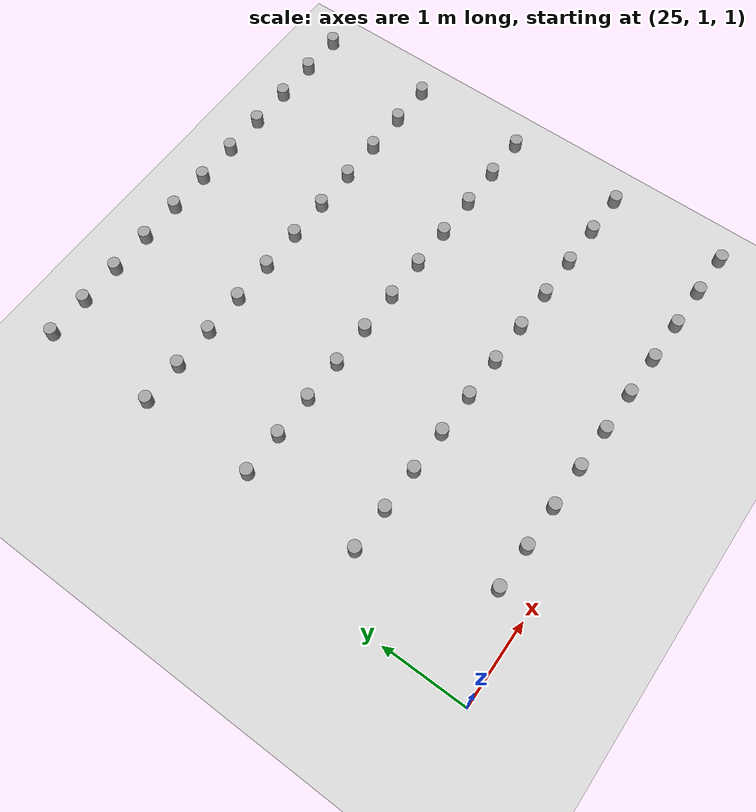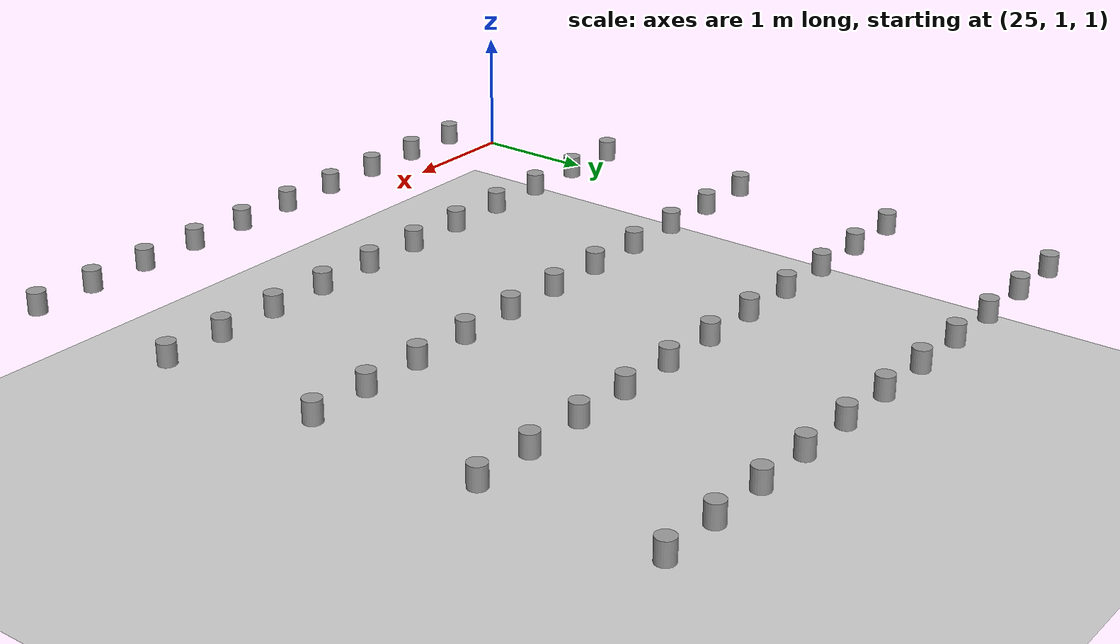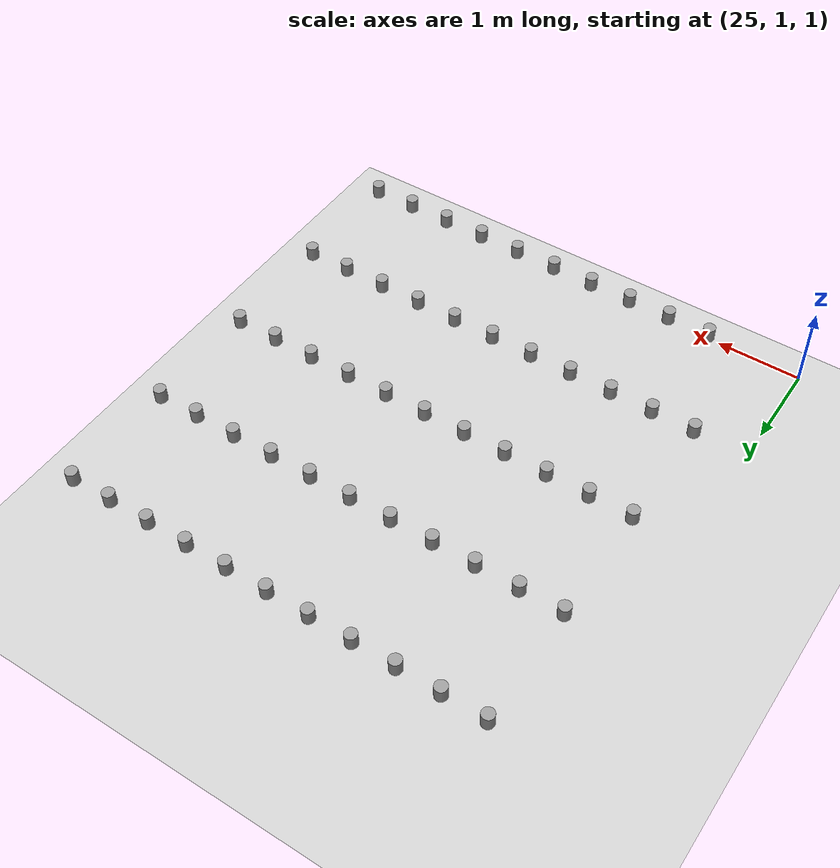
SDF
<sdf version="1.4">
 <world name="default">
  <model name="pot_426">
   <static>1</static>
   <link name="link_0">
    <collision name="collision">
     <geometry><cylinder><length>0.17</length><radius>0.07</radius></cylinder></geometry>
    </collision>
    <visual name="visual">
     <geometry><cylinder><length>0.17</length><radius>0.07</radius></cylinder></geometry>
     <material>
      <script><uri>file://media/materials/scripts/gazebo.material</uri><name>Gazebo/Grey</name></script>
      <emissive>0 0 0 1</emissive>
      <shader type="vertex"><normal_map>__default__</normal_map></shader>
      <specular>0.01 0.01 0.01 1</specular>
      <lighting>1</lighting>
      <ambient>0.1 0.1 0.1 1</ambient>
      <diffuse>0.05 0.05 0.05 1</diffuse>
     </material>
     <cast_shadows>0</cast_shadows>
    </visual>
    <pose>25.524 2.700 1.467 0.0 0.0 0.0</pose>
   </link>
  </model>
  <model name="pot_427">
   <static>1</static>
   <link name="link_0">
    <collision name="collision">
     <geometry><cylinder><length>0.17</length><radius>0.07</radius></cylinder></geometry>
    </collision>
    <visual name="visual">
     <geometry><cylinder><length>0.17</length><radius>0.07</radius></cylinder></geometry>
     <material>
      <script><uri>file://media/materials/scripts/gazebo.material</uri><name>Gazebo/Grey</name></script>
      <emissive>0 0 0 1</emissive>
      <shader type="vertex"><normal_map>__default__</normal_map></shader>
      <specular>0.01 0.01 0.01 1</specular>
      <lighting>1</lighting>
      <ambient>0.1 0.1 0.1 1</ambient>
      <diffuse>0.05 0.05 0.05 1</diffuse>
     </material>
     <cast_shadows>0</cast_shadows>
    </visual>
    <pose>25.524 4.050 1.467 0.0 0.0 0.0</pose>
   </link>
  </model>
  <model name="pot_428">
   <static>1</static>
   <link name="link_0">
    <collision name="collision">
     <geometry><cylinder><length>0.17</length><radius>0.07</radius></cylinder></geometry>
    </collision>
    <visual name="visual">
     <geometry><cylinder><length>0.17</length><radius>0.07</radius></cylinder></geometry>
     <material>
      <script><uri>file://media/materials/scripts/gazebo.material</uri><name>Gazebo/Grey</name></script>
      <emissive>0 0 0 1</emissive>
      <shader type="vertex"><normal_map>__default__</normal_map></shader>
      <specular>0.01 0.01 0.01 1</specular>
      <lighting>1</lighting>
      <ambient>0.1 0.1 0.1 1</ambient>
      <diffuse>0.05 0.05 0.05 1</diffuse>
     </material>
     <cast_shadows>0</cast_shadows>
    </visual>
    <pose>25.524 5.400 1.467 0.0 0.0 0.0</pose>
   </link>
  </model>
  <model name="pot_429">
   <static>1</static>
   <link name="link_0">
    <collision name="collision">
     <geometry><cylinder><length>0.17</length><radius>0.07</radius></cylinder></geometry>
    </collision>
    <visual name="visual">
     <geometry><cylinder><length>0.17</length><radius>0.07</radius></cylinder></geometry>
     <material>
      <script><uri>file://media/materials/scripts/gazebo.material</uri><name>Gazebo/Grey</name></script>
      <emissive>0 0 0 1</emissive>
      <shader type="vertex"><normal_map>__default__</normal_map></shader>
      <specular>0.01 0.01 0.01 1</specular>
      <lighting>1</lighting>
      <ambient>0.1 0.1 0.1 1</ambient>
      <diffuse>0.05 0.05 0.05 1</diffuse>
     </material>
     <cast_shadows>0</cast_shadows>
    </visual>
    <pose>25.524 6.750 1.467 0.0 0.0 0.0</pose>
   </link>
  </model>
  <model name="pot_430">
   <static>1</static>
   <link name="link_0">
    <collision name="collision">
     <geometry><cylinder><length>0.17</length><radius>0.07</radius></cylinder></geometry>
    </collision>
    <visual name="visual">
     <geometry><cylinder><length>0.17</length><radius>0.07</radius></cylinder></geometry>
     <material>
      <script><uri>file://media/materials/scripts/gazebo.material</uri><name>Gazebo/Grey</name></script>
      <emissive>0 0 0 1</emissive>
      <shader type="vertex"><normal_map>__default__</normal_map></shader>
      <specular>0.01 0.01 0.01 1</specular>
      <lighting>1</lighting>
      <ambient>0.1 0.1 0.1 1</ambient>
      <diffuse>0.05 0.05 0.05 1</diffuse>
     </material>
     <cast_shadows>0</cast_shadows>
    </visual>
    <pose>26.024 1.350 1.467 0.0 0.0 0.0</pose>
   </link>
  </model>
  <model name="pot_431">
   <static>1</static>
   <link name="link_0">
    <collision name="collision">
     <geometry><cylinder><length>0.17</length><radius>0.07</radius></cylinder></geometry>
    </collision>
    <visual name="visual">
     <geometry><cylinder><length>0.17</length><radius>0.07</radius></cylinder></geometry>
     <material>
      <script><uri>file://media/materials/scripts/gazebo.material</uri><name>Gazebo/Grey</name></script>
      <emissive>0 0 0 1</emissive>
      <shader type="vertex"><normal_map>__default__</normal_map></shader>
      <specular>0.01 0.01 0.01 1</specular>
      <lighting>1</lighting>
      <ambient>0.1 0.1 0.1 1</ambient>
      <diffuse>0.05 0.05 0.05 1</diffuse>
     </material>
     <cast_shadows>0</cast_shadows>
    </visual>
    <pose>26.024 2.700 1.467 0.0 0.0 0.0</pose>
   </link>
  </model>
  <model name="pot_432">
   <static>1</static>
   <link name="link_0">
    <collision name="collision">
     <geometry><cylinder><length>0.17</length><radius>0.07</radius></cylinder></geometry>
    </collision>
    <visual name="visual">
     <geometry><cylinder><length>0.17</length><radius>0.07</radius></cylinder></geometry>
     <material>
      <script><uri>file://media/materials/scripts/gazebo.material</uri><name>Gazebo/Grey</name></script>
      <emissive>0 0 0 1</emissive>
      <shader type="vertex"><normal_map>__default__</normal_map></shader>
      <specular>0.01 0.01 0.01 1</specular>
      <lighting>1</lighting>
      <ambient>0.1 0.1 0.1 1</ambient>
      <diffuse>0.05 0.05 0.05 1</diffuse>
     </material>
     <cast_shadows>0</cast_shadows>
    </visual>
    <pose>26.024 4.050 1.467 0.0 0.0 0.0</pose>
   </link>
  </model>
  <model name="pot_433">
   <static>1</static>
   <link name="link_0">
    <collision name="collision">
     <geometry><cylinder><length>0.17</length><radius>0.07</radius></cylinder></geometry>
    </collision>
    <visual name="visual">
     <geometry><cylinder><length>0.17</length><radius>0.07</radius></cylinder></geometry>
     <material>
      <script><uri>file://media/materials/scripts/gazebo.material</uri><name>Gazebo/Grey</name></script>
      <emissive>0 0 0 1</emissive>
      <shader type="vertex"><normal_map>__default__</normal_map></shader>
      <specular>0.01 0.01 0.01 1</specular>
      <lighting>1</lighting>
      <ambient>0.1 0.1 0.1 1</ambient>
      <diffuse>0.05 0.05 0.05 1</diffuse>
     </material>
     <cast_shadows>0</cast_shadows>
    </visual>
    <pose>26.024 5.400 1.467 0.0 0.0 0.0</pose>
   </link>
  </model>
  <model name="pot_434">
   <static>1</static>
   <link name="link_0">
    <collision name="collision">
     <geometry><cylinder><length>0.17</length><radius>0.07</radius></cylinder></geometry>
    </collision>
    <visual name="visual">
     <geometry><cylinder><length>0.17</length><radius>0.07</radius></cylinder></geometry>
     <material>
      <script><uri>file://media/materials/scripts/gazebo.material</uri><name>Gazebo/Grey</name></script>
      <emissive>0 0 0 1</emissive>
      <shader type="vertex"><normal_map>__default__</normal_map></shader>
      <specular>0.01 0.01 0.01 1</specular>
      <lighting>1</lighting>
      <ambient>0.1 0.1 0.1 1</ambient>
      <diffuse>0.05 0.05 0.05 1</diffuse>
     </material>
     <cast_shadows>0</cast_shadows>
    </visual>
    <pose>26.024 6.750 1.467 0.0 0.0 0.0</pose>
   </link>
  </model>
  <model name="pot_435">
   <static>1</static>
   <link name="link_0">
    <collision name="collision">
     <geometry><cylinder><length>0.17</length><radius>0.07</radius></cylinder></geometry>
    </collision>
    <visual name="visual">
     <geometry><cylinder><length>0.17</length><radius>0.07</radius></cylinder></geometry>
     <material>
      <script><uri>file://media/materials/scripts/gazebo.material</uri><name>Gazebo/Grey</name></script>
      <emissive>0 0 0 1</emissive>
      <shader type="vertex"><normal_map>__default__</normal_map></shader>
      <specular>0.01 0.01 0.01 1</specular>
      <lighting>1</lighting>
      <ambient>0.1 0.1 0.1 1</ambient>
      <diffuse>0.05 0.05 0.05 1</diffuse>
     </material>
     <cast_shadows>0</cast_shadows>
    </visual>
    <pose>26.524 1.350 1.467 0.0 0.0 0.0</pose>
   </link>
  </model>
  <model name="pot_436">
   <static>1</static>
   <link name="link_0">
    <collision name="collision">
     <geometry><cylinder><length>0.17</length><radius>0.07</radius></cylinder></geometry>
    </collision>
    <visual name="visual">
     <geometry><cylinder><length>0.17</length><radius>0.07</radius></cylinder></geometry>
     <material>
      <script><uri>file://media/materials/scripts/gazebo.material</uri><name>Gazebo/Grey</name></script>
      <emissive>0 0 0 1</emissive>
      <shader type="vertex"><normal_map>__default__</normal_map></shader>
      <specular>0.01 0.01 0.01 1</specular>
      <lighting>1</lighting>
      <ambient>0.1 0.1 0.1 1</ambient>
      <diffuse>0.05 0.05 0.05 1</diffuse>
     </material>
     <cast_shadows>0</cast_shadows>
    </visual>
    <pose>26.524 2.700 1.467 0.0 0.0 0.0</pose>
   </link>
  </model>
  <model name="pot_437">
   <static>1</static>
   <link name="link_0">
    <collision name="collision">
     <geometry><cylinder><length>0.17</length><radius>0.07</radius></cylinder></geometry>
    </collision>
    <visual name="visual">
     <geometry><cylinder><length>0.17</length><radius>0.07</radius></cylinder></geometry>
     <material>
      <script><uri>file://media/materials/scripts/gazebo.material</uri><name>Gazebo/Grey</name></script>
      <emissive>0 0 0 1</emissive>
      <shader type="vertex"><normal_map>__default__</normal_map></shader>
      <specular>0.01 0.01 0.01 1</specular>
      <lighting>1</lighting>
      <ambient>0.1 0.1 0.1 1</ambient>
      <diffuse>0.05 0.05 0.05 1</diffuse>
     </material>
     <cast_shadows>0</cast_shadows>
    </visual>
    <pose>26.524 4.050 1.467 0.0 0.0 0.0</pose>
   </link>
  </model>
  <model name="pot_438">
   <static>1</static>
   <link name="link_0">
    <collision name="collision">
     <geometry><cylinder><length>0.17</length><radius>0.07</radius></cylinder></geometry>
    </collision>
    <visual name="visual">
     <geometry><cylinder><length>0.17</length><radius>0.07</radius></cylinder></geometry>
     <material>
      <script><uri>file://media/materials/scripts/gazebo.material</uri><name>Gazebo/Grey</name></script>
      <emissive>0 0 0 1</emissive>
      <shader type="vertex"><normal_map>__default__</normal_map></shader>
      <specular>0.01 0.01 0.01 1</specular>
      <lighting>1</lighting>
      <ambient>0.1 0.1 0.1 1</ambient>
      <diffuse>0.05 0.05 0.05 1</diffuse>
     </material>
     <cast_shadows>0</cast_shadows>
    </visual>
    <pose>26.524 5.400 1.467 0.0 0.0 0.0</pose>
   </link>
  </model>
  <model name="pot_439">
   <static>1</static>
   <link name="link_0">
    <collision name="collision">
     <geometry><cylinder><length>0.17</length><radius>0.07</radius></cylinder></geometry>
    </collision>
    <visual name="visual">
     <geometry><cylinder><length>0.17</length><radius>0.07</radius></cylinder></geometry>
     <material>
      <script><uri>file://media/materials/scripts/gazebo.material</uri><name>Gazebo/Grey</name></script>
      <emissive>0 0 0 1</emissive>
      <shader type="vertex"><normal_map>__default__</normal_map></shader>
      <specular>0.01 0.01 0.01 1</specular>
      <lighting>1</lighting>
      <ambient>0.1 0.1 0.1 1</ambient>
      <diffuse>0.05 0.05 0.05 1</diffuse>
     </material>
     <cast_shadows>0</cast_shadows>
    </visual>
    <pose>26.524 6.750 1.467 0.0 0.0 0.0</pose>
   </link>
  </model>
  <model name="pot_440">
   <static>1</static>
   <link name="link_0">
    <collision name="collision">
     <geometry><cylinder><length>0.17</length><radius>0.07</radius></cylinder></geometry>
    </collision>
    <visual name="visual">
     <geometry><cylinder><length>0.17</length><radius>0.07</radius></cylinder></geometry>
     <material>
      <script><uri>file://media/materials/scripts/gazebo.material</uri><name>Gazebo/Grey</name></script>
      <emissive>0 0 0 1</emissive>
      <shader type="vertex"><normal_map>__default__</normal_map></shader>
      <specular>0.01 0.01 0.01 1</specular>
      <lighting>1</lighting>
      <ambient>0.1 0.1 0.1 1</ambient>
      <diffuse>0.05 0.05 0.05 1</diffuse>
     </material>
     <cast_shadows>0</cast_shadows>
    </visual>
    <pose>27.024 1.350 1.467 0.0 0.0 0.0</pose>
   </link>
  </model>
  <model name="pot_441">
   <static>1</static>
   <link name="link_0">
    <collision name="collision">
     <geometry><cylinder><length>0.17</length><radius>0.07</radius></cylinder></geometry>
    </collision>
    <visual name="visual">
     <geometry><cylinder><length>0.17</length><radius>0.07</radius></cylinder></geometry>
     <material>
      <script><uri>file://media/materials/scripts/gazebo.material</uri><name>Gazebo/Grey</name></script>
      <emissive>0 0 0 1</emissive>
      <shader type="vertex"><normal_map>__default__</normal_map></shader>
      <specular>0.01 0.01 0.01 1</specular>
      <lighting>1</lighting>
      <ambient>0.1 0.1 0.1 1</ambient>
      <diffuse>0.05 0.05 0.05 1</diffuse>
     </material>
     <cast_shadows>0</cast_shadows>
    </visual>
    <pose>27.024 2.700 1.467 0.0 0.0 0.0</pose>
   </link>
  </model>
  <model name="pot_442">
   <static>1</static>
   <link name="link_0">
    <collision name="collision">
     <geometry><cylinder><length>0.17</length><radius>0.07</radius></cylinder></geometry>
    </collision>
    <visual name="visual">
     <geometry><cylinder><length>0.17</length><radius>0.07</radius></cylinder></geometry>
     <material>
      <script><uri>file://media/materials/scripts/gazebo.material</uri><name>Gazebo/Grey</name></script>
      <emissive>0 0 0 1</emissive>
      <shader type="vertex"><normal_map>__default__</normal_map></shader>
      <specular>0.01 0.01 0.01 1</specular>
      <lighting>1</lighting>
      <ambient>0.1 0.1 0.1 1</ambient>
      <diffuse>0.05 0.05 0.05 1</diffuse>
     </material>
     <cast_shadows>0</cast_shadows>
    </visual>
    <pose>27.024 4.050 1.467 0.0 0.0 0.0</pose>
   </link>
  </model>
  <model name="pot_443">
   <static>1</static>
   <link name="link_0">
    <collision name="collision">
     <geometry><cylinder><length>0.17</length><radius>0.07</radius></cylinder></geometry>
    </collision>
    <visual name="visual">
     <geometry><cylinder><length>0.17</length><radius>0.07</radius></cylinder></geometry>
     <material>
      <script><uri>file://media/materials/scripts/gazebo.material</uri><name>Gazebo/Grey</name></script>
      <emissive>0 0 0 1</emissive>
      <shader type="vertex"><normal_map>__default__</normal_map></shader>
      <specular>0.01 0.01 0.01 1</specular>
      <lighting>1</lighting>
      <ambient>0.1 0.1 0.1 1</ambient>
      <diffuse>0.05 0.05 0.05 1</diffuse>
     </material>
     <cast_shadows>0</cast_shadows>
    </visual>
    <pose>27.024 5.400 1.467 0.0 0.0 0.0</pose>
   </link>
  </model>
  <model name="pot_444">
   <static>1</static>
   <link name="link_0">
    <collision name="collision">
     <geometry><cylinder><length>0.17</length><radius>0.07</radius></cylinder></geometry>
    </collision>
    <visual name="visual">
     <geometry><cylinder><length>0.17</length><radius>0.07</radius></cylinder></geometry>
     <material>
      <script><uri>file://media/materials/scripts/gazebo.material</uri><name>Gazebo/Grey</name></script>
      <emissive>0 0 0 1</emissive>
      <shader type="vertex"><normal_map>__default__</normal_map></shader>
      <specular>0.01 0.01 0.01 1</specular>
      <lighting>1</lighting>
      <ambient>0.1 0.1 0.1 1</ambient>
      <diffuse>0.05 0.05 0.05 1</diffuse>
     </material>
     <cast_shadows>0</cast_shadows>
    </visual>
    <pose>27.024 6.750 1.467 0.0 0.0 0.0</pose>
   </link>
  </model>
  <model name="pot_445">
   <static>1</static>
   <link name="link_0">
    <collision name="collision">
     <geometry><cylinder><length>0.17</length><radius>0.07</radius></cylinder></geometry>
    </collision>
    <visual name="visual">
     <geometry><cylinder><length>0.17</length><radius>0.07</radius></cylinder></geometry>
     <material>
      <script><uri>file://media/materials/scripts/gazebo.material</uri><name>Gazebo/Grey</name></script>
      <emissive>0 0 0 1</emissive>
      <shader type="vertex"><normal_map>__default__</normal_map></shader>
      <specular>0.01 0.01 0.01 1</specular>
      <lighting>1</lighting>
      <ambient>0.1 0.1 0.1 1</ambient>
      <diffuse>0.05 0.05 0.05 1</diffuse>
     </material>
     <cast_shadows>0</cast_shadows>
    </visual>
    <pose>27.524 1.350 1.467 0.0 0.0 0.0</pose>
   </link>
  </model>
  <model name="pot_446">
   <static>1</static>
   <link name="link_0">
    <collision name="collision">
     <geometry><cylinder><length>0.17</length><radius>0.07</radius></cylinder></geometry>
    </collision>
    <visual name="visual">
     <geometry><cylinder><length>0.17</length><radius>0.07</radius></cylinder></geometry>
     <material>
      <script><uri>file://media/materials/scripts/gazebo.material</uri><name>Gazebo/Grey</name></script>
      <emissive>0 0 0 1</emissive>
      <shader type="vertex"><normal_map>__default__</normal_map></shader>
      <specular>0.01 0.01 0.01 1</specular>
      <lighting>1</lighting>
      <ambient>0.1 0.1 0.1 1</ambient>
      <diffuse>0.05 0.05 0.05 1</diffuse>
     </material>
     <cast_shadows>0</cast_shadows>
    </visual>
    <pose>27.524 2.700 1.467 0.0 0.0 0.0</pose>
   </link>
  </model>
  <model name="pot_447">
   <static>1</static>
   <link name="link_0">
    <collision name="collision">
     <geometry><cylinder><length>0.17</length><radius>0.07</radius></cylinder></geometry>
    </collision>
    <visual name="visual">
     <geometry><cylinder><length>0.17</length><radius>0.07</radius></cylinder></geometry>
     <material>
      <script><uri>file://media/materials/scripts/gazebo.material</uri><name>Gazebo/Grey</name></script>
      <emissive>0 0 0 1</emissive>
      <shader type="vertex"><normal_map>__default__</normal_map></shader>
      <specular>0.01 0.01 0.01 1</specular>
      <lighting>1</lighting>
      <ambient>0.1 0.1 0.1 1</ambient>
      <diffuse>0.05 0.05 0.05 1</diffuse>
     </material>
     <cast_shadows>0</cast_shadows>
    </visual>
    <pose>27.524 4.050 1.467 0.0 0.0 0.0</pose>
   </link>
  </model>
  <model name="pot_448">
   <static>1</static>
   <link name="link_0">
    <collision name="collision">
     <geometry><cylinder><length>0.17</length><radius>0.07</radius></cylinder></geometry>
    </collision>
    <visual name="visual">
     <geometry><cylinder><length>0.17</length><radius>0.07</radius></cylinder></geometry>
     <material>
      <script><uri>file://media/materials/scripts/gazebo.material</uri><name>Gazebo/Grey</name></script>
      <emissive>0 0 0 1</emissive>
      <shader type="vertex"><normal_map>__default__</normal_map></shader>
      <specular>0.01 0.01 0.01 1</specular>
      <lighting>1</lighting>
      <ambient>0.1 0.1 0.1 1</ambient>
      <diffuse>0.05 0.05 0.05 1</diffuse>
     </material>
     <cast_shadows>0</cast_shadows>
    </visual>
    <pose>27.524 5.400 1.467 0.0 0.0 0.0</pose>
   </link>
  </model>
  <model name="pot_449">
   <static>1</static>
   <link name="link_0">
    <collision name="collision">
     <geometry><cylinder><length>0.17</length><radius>0.07</radius></cylinder></geometry>
    </collision>
    <visual name="visual">
     <geometry><cylinder><length>0.17</length><radius>0.07</radius></cylinder></geometry>
     <material>
      <script><uri>file://media/materials/scripts/gazebo.material</uri><name>Gazebo/Grey</name></script>
      <emissive>0 0 0 1</emissive>
      <shader type="vertex"><normal_map>__default__</normal_map></shader>
      <specular>0.01 0.01 0.01 1</specular>
      <lighting>1</lighting>
      <ambient>0.1 0.1 0.1 1</ambient>
      <diffuse>0.05 0.05 0.05 1</diffuse>
     </material>
     <cast_shadows>0</cast_shadows>
    </visual>
    <pose>27.524 6.750 1.467 0.0 0.0 0.0</pose>
   </link>
  </model>
  <model name="pot_450">
   <static>1</static>
   <link name="link_0">
    <collision name="collision">
     <geometry><cylinder><length>0.17</length><radius>0.07</radius></cylinder></geometry>
    </collision>
    <visual name="visual">
     <geometry><cylinder><length>0.17</length><radius>0.07</radius></cylinder></geometry>
     <material>
      <script><uri>file://media/materials/scripts/gazebo.material</uri><name>Gazebo/Grey</name></script>
      <emissive>0 0 0 1</emissive>
      <shader type="vertex"><normal_map>__default__</normal_map></shader>
      <specular>0.01 0.01 0.01 1</specular>
      <lighting>1</lighting>
      <ambient>0.1 0.1 0.1 1</ambient>
      <diffuse>0.05 0.05 0.05 1</diffuse>
     </material>
     <cast_shadows>0</cast_shadows>
    </visual>
    <pose>28.024 1.350 1.467 0.0 0.0 0.0</pose>
   </link>
  </model>
  <model name="pot_451">
   <static>1</static>
   <link name="link_0">
    <collision name="collision">
     <geometry><cylinder><length>0.17</length><radius>0.07</radius></cylinder></geometry>
    </collision>
    <visual name="visual">
     <geometry><cylinder><length>0.17</length><radius>0.07</radius></cylinder></geometry>
     <material>
      <script><uri>file://media/materials/scripts/gazebo.material</uri><name>Gazebo/Grey</name></script>
      <emissive>0 0 0 1</emissive>
      <shader type="vertex"><normal_map>__default__</normal_map></shader>
      <specular>0.01 0.01 0.01 1</specular>
      <lighting>1</lighting>
      <ambient>0.1 0.1 0.1 1</ambient>
      <diffuse>0.05 0.05 0.05 1</diffuse>
     </material>
     <cast_shadows>0</cast_shadows>
    </visual>
    <pose>28.024 2.700 1.467 0.0 0.0 0.0</pose>
   </link>
  </model>
  <model name="pot_452">
   <static>1</static>
   <link name="link_0">
    <collision name="collision">
     <geometry><cylinder><length>0.17</length><radius>0.07</radius></cylinder></geometry>
    </collision>
    <visual name="visual">
     <geometry><cylinder><length>0.17</length><radius>0.07</radius></cylinder></geometry>
     <material>
      <script><uri>file://media/materials/scripts/gazebo.material</uri><name>Gazebo/Grey</name></script>
      <emissive>0 0 0 1</emissive>
      <shader type="vertex"><normal_map>__default__</normal_map></shader>
      <specular>0.01 0.01 0.01 1</specular>
      <lighting>1</lighting>
      <ambient>0.1 0.1 0.1 1</ambient>
      <diffuse>0.05 0.05 0.05 1</diffuse>
     </material>
     <cast_shadows>0</cast_shadows>
    </visual>
    <pose>28.024 4.050 1.467 0.0 0.0 0.0</pose>
   </link>
  </model>
  <model name="pot_453">
   <static>1</static>
   <link name="link_0">
    <collision name="collision">
     <geometry><cylinder><length>0.17</length><radius>0.07</radius></cylinder></geometry>
    </collision>
    <visual name="visual">
     <geometry><cylinder><length>0.17</length><radius>0.07</radius></cylinder></geometry>
     <material>
      <script><uri>file://media/materials/scripts/gazebo.material</uri><name>Gazebo/Grey</name></script>
      <emissive>0 0 0 1</emissive>
      <shader type="vertex"><normal_map>__default__</normal_map></shader>
      <specular>0.01 0.01 0.01 1</specular>
      <lighting>1</lighting>
      <ambient>0.1 0.1 0.1 1</ambient>
      <diffuse>0.05 0.05 0.05 1</diffuse>
     </material>
     <cast_shadows>0</cast_shadows>
    </visual>
    <pose>28.024 5.400 1.467 0.0 0.0 0.0</pose>
   </link>
  </model>
  <model name="pot_454">
   <static>1</static>
   <link name="link_0">
    <collision name="collision">
     <geometry><cylinder><length>0.17</length><radius>0.07</radius></cylinder></geometry>
    </collision>
    <visual name="visual">
     <geometry><cylinder><length>0.17</length><radius>0.07</radius></cylinder></geometry>
     <material>
      <script><uri>file://media/materials/scripts/gazebo.material</uri><name>Gazebo/Grey</name></script>
      <emissive>0 0 0 1</emissive>
      <shader type="vertex"><normal_map>__default__</normal_map></shader>
      <specular>0.01 0.01 0.01 1</specular>
      <lighting>1</lighting>
      <ambient>0.1 0.1 0.1 1</ambient>
      <diffuse>0.05 0.05 0.05 1</diffuse>
     </material>
     <cast_shadows>0</cast_shadows>
    </visual>
    <pose>28.024 6.750 1.467 0.0 0.0 0.0</pose>
   </link>
  </model>
  <model name="pot_455">
   <static>1</static>
   <link name="link_0">
    <collision name="collision">
     <geometry><cylinder><length>0.17</length><radius>0.07</radius></cylinder></geometry>
    </collision>
    <visual name="visual">
     <geometry><cylinder><length>0.17</length><radius>0.07</radius></cylinder></geometry>
     <material>
      <script><uri>file://media/materials/scripts/gazebo.material</uri><name>Gazebo/Grey</name></script>
      <emissive>0 0 0 1</emissive>
      <shader type="vertex"><normal_map>__default__</normal_map></shader>
      <specular>0.01 0.01 0.01 1</specular>
      <lighting>1</lighting>
      <ambient>0.1 0.1 0.1 1</ambient>
      <diffuse>0.05 0.05 0.05 1</diffuse>
     </material>
     <cast_shadows>0</cast_shadows>
    </visual>
    <pose>28.524 1.350 1.467 0.0 0.0 0.0</pose>
   </link>
  </model>
  <model name="pot_456">
   <static>1</static>
   <link name="link_0">
    <collision name="collision">
     <geometry><cylinder><length>0.17</length><radius>0.07</radius></cylinder></geometry>
    </collision>
    <visual name="visual">
     <geometry><cylinder><length>0.17</length><radius>0.07</radius></cylinder></geometry>
     <material>
      <script><uri>file://media/materials/scripts/gazebo.material</uri><name>Gazebo/Grey</name></script>
      <emissive>0 0 0 1</emissive>
      <shader type="vertex"><normal_map>__default__</normal_map></shader>
      <specular>0.01 0.01 0.01 1</specular>
      <lighting>1</lighting>
      <ambient>0.1 0.1 0.1 1</ambient>
      <diffuse>0.05 0.05 0.05 1</diffuse>
     </material>
     <cast_shadows>0</cast_shadows>
    </visual>
    <pose>28.524 2.700 1.467 0.0 0.0 0.0</pose>
   </link>
  </model>
  <model name="pot_457">
   <static>1</static>
   <link name="link_0">
    <collision name="collision">
     <geometry><cylinder><length>0.17</length><radius>0.07</radius></cylinder></geometry>
    </collision>
    <visual name="visual">
     <geometry><cylinder><length>0.17</length><radius>0.07</radius></cylinder></geometry>
     <material>
      <script><uri>file://media/materials/scripts/gazebo.material</uri><name>Gazebo/Grey</name></script>
      <emissive>0 0 0 1</emissive>
      <shader type="vertex"><normal_map>__default__</normal_map></shader>
      <specular>0.01 0.01 0.01 1</specular>
      <lighting>1</lighting>
      <ambient>0.1 0.1 0.1 1</ambient>
      <diffuse>0.05 0.05 0.05 1</diffuse>
     </material>
     <cast_shadows>0</cast_shadows>
    </visual>
    <pose>28.524 4.050 1.467 0.0 0.0 0.0</pose>
   </link>
  </model>
  <model name="pot_458">
   <static>1</static>
   <link name="link_0">
    <collision name="collision">
     <geometry><cylinder><length>0.17</length><radius>0.07</radius></cylinder></geometry>
    </collision>
    <visual name="visual">
     <geometry><cylinder><length>0.17</length><radius>0.07</radius></cylinder></geometry>
     <material>
      <script><uri>file://media/materials/scripts/gazebo.material</uri><name>Gazebo/Grey</name></script>
      <emissive>0 0 0 1</emissive>
      <shader type="vertex"><normal_map>__default__</normal_map></shader>
      <specular>0.01 0.01 0.01 1</specular>
      <lighting>1</lighting>
      <ambient>0.1 0.1 0.1 1</ambient>
      <diffuse>0.05 0.05 0.05 1</diffuse>
     </material>
     <cast_shadows>0</cast_shadows>
    </visual>
    <pose>28.524 5.400 1.467 0.0 0.0 0.0</pose>
   </link>
  </model>
  <model name="pot_459">
   <static>1</static>
   <link name="link_0">
    <collision name="collision">
     <geometry><cylinder><length>0.17</length><radius>0.07</radius></cylinder></geometry>
    </collision>
    <visual name="visual">
     <geometry><cylinder><length>0.17</length><radius>0.07</radius></cylinder></geometry>
     <material>
      <script><uri>file://media/materials/scripts/gazebo.material</uri><name>Gazebo/Grey</name></script>
      <emissive>0 0 0 1</emissive>
      <shader type="vertex"><normal_map>__default__</normal_map></shader>
      <specular>0.01 0.01 0.01 1</specular>
      <lighting>1</lighting>
      <ambient>0.1 0.1 0.1 1</ambient>
      <diffuse>0.05 0.05 0.05 1</diffuse>
     </material>
     <cast_shadows>0</cast_shadows>
    </visual>
    <pose>28.524 6.750 1.467 0.0 0.0 0.0</pose>
   </link>
  </model>
  <model name="pot_460">
   <static>1</static>
   <link name="link_0">
    <collision name="collision">
     <geometry><cylinder><length>0.17</length><radius>0.07</radius></cylinder></geometry>
    </collision>
    <visual name="visual">
     <geometry><cylinder><length>0.17</length><radius>0.07</radius></cylinder></geometry>
     <material>
      <script><uri>file://media/materials/scripts/gazebo.material</uri><name>Gazebo/Grey</name></script>
      <emissive>0 0 0 1</emissive>
      <shader type="vertex"><normal_map>__default__</normal_map></shader>
      <specular>0.01 0.01 0.01 1</specular>
      <lighting>1</lighting>
      <ambient>0.1 0.1 0.1 1</ambient>
      <diffuse>0.05 0.05 0.05 1</diffuse>
     </material>
     <cast_shadows>0</cast_shadows>
    </visual>
    <pose>29.024 1.350 1.467 0.0 0.0 0.0</pose>
   </link>
  </model>
  <model name="pot_461">
   <static>1</static>
   <link name="link_0">
    <collision name="collision">
     <geometry><cylinder><length>0.17</length><radius>0.07</radius></cylinder></geometry>
    </collision>
    <visual name="visual">
     <geometry><cylinder><length>0.17</length><radius>0.07</radius></cylinder></geometry>
     <material>
      <script><uri>file://media/materials/scripts/gazebo.material</uri><name>Gazebo/Grey</name></script>
      <emissive>0 0 0 1</emissive>
      <shader type="vertex"><normal_map>__default__</normal_map></shader>
      <specular>0.01 0.01 0.01 1</specular>
      <lighting>1</lighting>
      <ambient>0.1 0.1 0.1 1</ambient>
      <diffuse>0.05 0.05 0.05 1</diffuse>
     </material>
     <cast_shadows>0</cast_shadows>
    </visual>
    <pose>29.024 2.700 1.467 0.0 0.0 0.0</pose>
   </link>
  </model>
  <model name="pot_462">
   <static>1</static>
   <link name="link_0">
    <collision name="collision">
     <geometry><cylinder><length>0.17</length><radius>0.07</radius></cylinder></geometry>
    </collision>
    <visual name="visual">
     <geometry><cylinder><length>0.17</length><radius>0.07</radius></cylinder></geometry>
     <material>
      <script><uri>file://media/materials/scripts/gazebo.material</uri><name>Gazebo/Grey</name></script>
      <emissive>0 0 0 1</emissive>
      <shader type="vertex"><normal_map>__default__</normal_map></shader>
      <specular>0.01 0.01 0.01 1</specular>
      <lighting>1</lighting>
      <ambient>0.1 0.1 0.1 1</ambient>
      <diffuse>0.05 0.05 0.05 1</diffuse>
     </material>
     <cast_shadows>0</cast_shadows>
    </visual>
    <pose>29.024 4.050 1.467 0.0 0.0 0.0</pose>
   </link>
  </model>
  <model name="pot_463">
   <static>1</static>
   <link name="link_0">
    <collision name="collision">
     <geometry><cylinder><length>0.17</length><radius>0.07</radius></cylinder></geometry>
    </collision>
    <visual name="visual">
     <geometry><cylinder><length>0.17</length><radius>0.07</radius></cylinder></geometry>
     <material>
      <script><uri>file://media/materials/scripts/gazebo.material</uri><name>Gazebo/Grey</name></script>
      <emissive>0 0 0 1</emissive>
      <shader type="vertex"><normal_map>__default__</normal_map></shader>
      <specular>0.01 0.01 0.01 1</specular>
      <lighting>1</lighting>
      <ambient>0.1 0.1 0.1 1</ambient>
      <diffuse>0.05 0.05 0.05 1</diffuse>
     </material>
     <cast_shadows>0</cast_shadows>
    </visual>
    <pose>29.024 5.400 1.467 0.0 0.0 0.0</pose>
   </link>
  </model>
  <model name="pot_464">
   <static>1</static>
   <link name="link_0">
    <collision name="collision">
     <geometry><cylinder><length>0.17</length><radius>0.07</radius></cylinder></geometry>
    </collision>
    <visual name="visual">
     <geometry><cylinder><length>0.17</length><radius>0.07</radius></cylinder></geometry>
     <material>
      <script><uri>file://media/materials/scripts/gazebo.material</uri><name>Gazebo/Grey</name></script>
      <emissive>0 0 0 1</emissive>
      <shader type="vertex"><normal_map>__default__</normal_map></shader>
      <specular>0.01 0.01 0.01 1</specular>
      <lighting>1</lighting>
      <ambient>0.1 0.1 0.1 1</ambient>
      <diffuse>0.05 0.05 0.05 1</diffuse>
     </material>
     <cast_shadows>0</cast_shadows>
    </visual>
    <pose>29.024 6.750 1.467 0.0 0.0 0.0</pose>
   </link>
  </model>
  <model name="pot_465">
   <static>1</static>
   <link name="link_0">
    <collision name="collision">
     <geometry><cylinder><length>0.17</length><radius>0.07</radius></cylinder></geometry>
    </collision>
    <visual name="visual">
     <geometry><cylinder><length>0.17</length><radius>0.07</radius></cylinder></geometry>
     <material>
      <script><uri>file://media/materials/scripts/gazebo.material</uri><name>Gazebo/Grey</name></script>
      <emissive>0 0 0 1</emissive>
      <shader type="vertex"><normal_map>__default__</normal_map></shader>
      <specular>0.01 0.01 0.01 1</specular>
      <lighting>1</lighting>
      <ambient>0.1 0.1 0.1 1</ambient>
      <diffuse>0.05 0.05 0.05 1</diffuse>
     </material>
     <cast_shadows>0</cast_shadows>
    </visual>
    <pose>29.524 1.350 1.467 0.0 0.0 0.0</pose>
   </link>
  </model>
  <model name="pot_466">
   <static>1</static>
   <link name="link_0">
    <collision name="collision">
     <geometry><cylinder><length>0.17</length><radius>0.07</radius></cylinder></geometry>
    </collision>
    <visual name="visual">
     <geometry><cylinder><length>0.17</length><radius>0.07</radius></cylinder></geometry>
     <material>
      <script><uri>file://media/materials/scripts/gazebo.material</uri><name>Gazebo/Grey</name></script>
      <emissive>0 0 0 1</emissive>
      <shader type="vertex"><normal_map>__default__</normal_map></shader>
      <specular>0.01 0.01 0.01 1</specular>
      <lighting>1</lighting>
      <ambient>0.1 0.1 0.1 1</ambient>
      <diffuse>0.05 0.05 0.05 1</diffuse>
     </material>
     <cast_shadows>0</cast_shadows>
    </visual>
    <pose>29.524 2.700 1.467 0.0 0.0 0.0</pose>
   </link>
  </model>
  <model name="pot_467">
   <static>1</static>
   <link name="link_0">
    <collision name="collision">
     <geometry><cylinder><length>0.17</length><radius>0.07</radius></cylinder></geometry>
    </collision>
    <visual name="visual">
     <geometry><cylinder><length>0.17</length><radius>0.07</radius></cylinder></geometry>
     <material>
      <script><uri>file://media/materials/scripts/gazebo.material</uri><name>Gazebo/Grey</name></script>
      <emissive>0 0 0 1</emissive>
      <shader type="vertex"><normal_map>__default__</normal_map></shader>
      <specular>0.01 0.01 0.01 1</specular>
      <lighting>1</lighting>
      <ambient>0.1 0.1 0.1 1</ambient>
      <diffuse>0.05 0.05 0.05 1</diffuse>
     </material>
     <cast_shadows>0</cast_shadows>
    </visual>
    <pose>29.524 4.050 1.467 0.0 0.0 0.0</pose>
   </link>
  </model>
  <model name="pot_468">
   <static>1</static>
   <link name="link_0">
    <collision name="collision">
     <geometry><cylinder><length>0.17</length><radius>0.07</radius></cylinder></geometry>
    </collision>
    <visual name="visual">
     <geometry><cylinder><length>0.17</length><radius>0.07</radius></cylinder></geometry>
     <material>
      <script><uri>file://media/materials/scripts/gazebo.material</uri><name>Gazebo/Grey</name></script>
      <emissive>0 0 0 1</emissive>
      <shader type="vertex"><normal_map>__default__</normal_map></shader>
      <specular>0.01 0.01 0.01 1</specular>
      <lighting>1</lighting>
      <ambient>0.1 0.1 0.1 1</ambient>
      <diffuse>0.05 0.05 0.05 1</diffuse>
     </material>
     <cast_shadows>0</cast_shadows>
    </visual>
    <pose>29.524 5.400 1.467 0.0 0.0 0.0</pose>
   </link>
  </model>
  <model name="pot_469">
   <static>1</static>
   <link name="link_0">
    <collision name="collision">
     <geometry><cylinder><length>0.17</length><radius>0.07</radius></cylinder></geometry>
    </collision>
    <visual name="visual">
     <geometry><cylinder><length>0.17</length><radius>0.07</radius></cylinder></geometry>
     <material>
      <script><uri>file://media/materials/scripts/gazebo.material</uri><name>Gazebo/Grey</name></script>
      <emissive>0 0 0 1</emissive>
      <shader type="vertex"><normal_map>__default__</normal_map></shader>
      <specular>0.01 0.01 0.01 1</specular>
      <lighting>1</lighting>
      <ambient>0.1 0.1 0.1 1</ambient>
      <diffuse>0.05 0.05 0.05 1</diffuse>
     </material>
     <cast_shadows>0</cast_shadows>
    </visual>
    <pose>29.524 6.750 1.467 0.0 0.0 0.0</pose>
   </link>
  </model>
  <model name="pot_470">
   <static>1</static>
   <link name="link_0">
    <collision name="collision">
     <geometry><cylinder><length>0.17</length><radius>0.07</radius></cylinder></geometry>
    </collision>
    <visual name="visual">
     <geometry><cylinder><length>0.17</length><radius>0.07</radius></cylinder></geometry>
     <material>
      <script><uri>file://media/materials/scripts/gazebo.material</uri><name>Gazebo/Grey</name></script>
      <emissive>0 0 0 1</emissive>
      <shader type="vertex"><normal_map>__default__</normal_map></shader>
      <specular>0.01 0.01 0.01 1</specular>
      <lighting>1</lighting>
      <ambient>0.1 0.1 0.1 1</ambient>
      <diffuse>0.05 0.05 0.05 1</diffuse>
     </material>
     <cast_shadows>0</cast_shadows>
    </visual>
    <pose>30.024 1.350 1.467 0.0 0.0 0.0</pose>
   </link>
  </model>
  <model name="pot_471">
   <static>1</static>
   <link name="link_0">
    <collision name="collision">
     <geometry><cylinder><length>0.17</length><radius>0.07</radius></cylinder></geometry>
    </collision>
    <visual name="visual">
     <geometry><cylinder><length>0.17</length><radius>0.07</radius></cylinder></geometry>
     <material>
      <script><uri>file://media/materials/scripts/gazebo.material</uri><name>Gazebo/Grey</name></script>
      <emissive>0 0 0 1</emissive>
      <shader type="vertex"><normal_map>__default__</normal_map></shader>
      <specular>0.01 0.01 0.01 1</specular>
      <lighting>1</lighting>
      <ambient>0.1 0.1 0.1 1</ambient>
      <diffuse>0.05 0.05 0.05 1</diffuse>
     </material>
     <cast_shadows>0</cast_shadows>
    </visual>
    <pose>30.024 2.700 1.467 0.0 0.0 0.0</pose>
   </link>
  </model>
  <model name="pot_472">
   <static>1</static>
   <link name="link_0">
    <collision name="collision">
     <geometry><cylinder><length>0.17</length><radius>0.07</radius></cylinder></geometry>
    </collision>
    <visual name="visual">
     <geometry><cylinder><length>0.17</length><radius>0.07</radius></cylinder></geometry>
     <material>
      <script><uri>file://media/materials/scripts/gazebo.material</uri><name>Gazebo/Grey</name></script>
      <emissive>0 0 0 1</emissive>
      <shader type="vertex"><normal_map>__default__</normal_map></shader>
      <specular>0.01 0.01 0.01 1</specular>
      <lighting>1</lighting>
      <ambient>0.1 0.1 0.1 1</ambient>
      <diffuse>0.05 0.05 0.05 1</diffuse>
     </material>
     <cast_shadows>0</cast_shadows>
    </visual>
    <pose>30.024 4.050 1.467 0.0 0.0 0.0</pose>
   </link>
  </model>
  <model name="pot_473">
   <static>1</static>
   <link name="link_0">
    <collision name="collision">
     <geometry><cylinder><length>0.17</length><radius>0.07</radius></cylinder></geometry>
    </collision>
    <visual name="visual">
     <geometry><cylinder><length>0.17</length><radius>0.07</radius></cylinder></geometry>
     <material>
      <script><uri>file://media/materials/scripts/gazebo.material</uri><name>Gazebo/Grey</name></script>
      <emissive>0 0 0 1</emissive>
      <shader type="vertex"><normal_map>__default__</normal_map></shader>
      <specular>0.01 0.01 0.01 1</specular>
      <lighting>1</lighting>
      <ambient>0.1 0.1 0.1 1</ambient>
      <diffuse>0.05 0.05 0.05 1</diffuse>
     </material>
     <cast_shadows>0</cast_shadows>
    </visual>
    <pose>30.024 5.400 1.467 0.0 0.0 0.0</pose>
   </link>
  </model>
  <model name="pot_474">
   <static>1</static>
   <link name="link_0">
    <collision name="collision">
     <geometry><cylinder><length>0.17</length><radius>0.07</radius></cylinder></geometry>
    </collision>
    <visual name="visual">
     <geometry><cylinder><length>0.17</length><radius>0.07</radius></cylinder></geometry>
     <material>
      <script><uri>file://media/materials/scripts/gazebo.material</uri><name>Gazebo/Grey</name></script>
      <emissive>0 0 0 1</emissive>
      <shader type="vertex"><normal_map>__default__</normal_map></shader>
      <specular>0.01 0.01 0.01 1</specular>
      <lighting>1</lighting>
      <ambient>0.1 0.1 0.1 1</ambient>
      <diffuse>0.05 0.05 0.05 1</diffuse>
     </material>
     <cast_shadows>0</cast_shadows>
    </visual>
    <pose>30.024 6.750 1.467 0.0 0.0 0.0</pose>
   </link>
  </model>
  <model name="pot_475">
   <static>1</static>
   <link name="link_0">
    <collision name="collision">
     <geometry><cylinder><length>0.17</length><radius>0.07</radius></cylinder></geometry>
    </collision>
    <visual name="visual">
     <geometry><cylinder><length>0.17</length><radius>0.07</radius></cylinder></geometry>
     <material>
      <script><uri>file://media/materials/scripts/gazebo.material</uri><name>Gazebo/Grey</name></script>
      <emissive>0 0 0 1</emissive>
      <shader type="vertex"><normal_map>__default__</normal_map></shader>
      <specular>0.01 0.01 0.01 1</specular>
      <lighting>1</lighting>
      <ambient>0.1 0.1 0.1 1</ambient>
      <diffuse>0.05 0.05 0.05 1</diffuse>
     </material>
     <cast_shadows>0</cast_shadows>
    </visual>
    <pose>30.524 1.350 1.467 0.0 0.0 0.0</pose>
   </link>
  </model>
  <model name="pot_476">
   <static>1</static>
   <link name="link_0">
    <collision name="collision">
     <geometry><cylinder><length>0.17</length><radius>0.07</radius></cylinder></geometry>
    </collision>
    <visual name="visual">
     <geometry><cylinder><length>0.17</length><radius>0.07</radius></cylinder></geometry>
     <material>
      <script><uri>file://media/materials/scripts/gazebo.material</uri><name>Gazebo/Grey</name></script>
      <emissive>0 0 0 1</emissive>
      <shader type="vertex"><normal_map>__default__</normal_map></shader>
      <specular>0.01 0.01 0.01 1</specular>
      <lighting>1</lighting>
      <ambient>0.1 0.1 0.1 1</ambient>
      <diffuse>0.05 0.05 0.05 1</diffuse>
     </material>
     <cast_shadows>0</cast_shadows>
    </visual>
    <pose>30.524 2.700 1.467 0.0 0.0 0.0</pose>
   </link>
  </model>
  <model name="pot_477">
   <static>1</static>
   <link name="link_0">
    <collision name="collision">
     <geometry><cylinder><length>0.17</length><radius>0.07</radius></cylinder></geometry>
    </collision>
    <visual name="visual">
     <geometry><cylinder><length>0.17</length><radius>0.07</radius></cylinder></geometry>
     <material>
      <script><uri>file://media/materials/scripts/gazebo.material</uri><name>Gazebo/Grey</name></script>
      <emissive>0 0 0 1</emissive>
      <shader type="vertex"><normal_map>__default__</normal_map></shader>
      <specular>0.01 0.01 0.01 1</specular>
      <lighting>1</lighting>
      <ambient>0.1 0.1 0.1 1</ambient>
      <diffuse>0.05 0.05 0.05 1</diffuse>
     </material>
     <cast_shadows>0</cast_shadows>
    </visual>
    <pose>30.524 4.050 1.467 0.0 0.0 0.0</pose>
   </link>
  </model>
  <model name="pot_478">
   <static>1</static>
   <link name="link_0">
    <collision name="collision">
     <geometry><cylinder><length>0.17</length><radius>0.07</radius></cylinder></geometry>
    </collision>
    <visual name="visual">
     <geometry><cylinder><length>0.17</length><radius>0.07</radius></cylinder></geometry>
     <material>
      <script><uri>file://media/materials/scripts/gazebo.material</uri><name>Gazebo/Grey</name></script>
      <emissive>0 0 0 1</emissive>
      <shader type="vertex"><normal_map>__default__</normal_map></shader>
      <specular>0.01 0.01 0.01 1</specular>
      <lighting>1</lighting>
      <ambient>0.1 0.1 0.1 1</ambient>
      <diffuse>0.05 0.05 0.05 1</diffuse>
     </material>
     <cast_shadows>0</cast_shadows>
    </visual>
    <pose>30.524 5.400 1.467 0.0 0.0 0.0</pose>
   </link>
  </model>
  <model name="pot_479">
   <static>1</static>
   <link name="link_0">
    <collision name="collision">
     <geometry><cylinder><length>0.17</length><radius>0.07</radius></cylinder></geometry>
    </collision>
    <visual name="visual">
     <geometry><cylinder><length>0.17</length><radius>0.07</radius></cylinder></geometry>
     <material>
      <script><uri>file://media/materials/scripts/gazebo.material</uri><name>Gazebo/Grey</name></script>
      <emissive>0 0 0 1</emissive>
      <shader type="vertex"><normal_map>__default__</normal_map></shader>
      <specular>0.01 0.01 0.01 1</specular>
      <lighting>1</lighting>
      <ambient>0.1 0.1 0.1 1</ambient>
      <diffuse>0.05 0.05 0.05 1</diffuse>
     </material>
     <cast_shadows>0</cast_shadows>
    </visual>
    <pose>30.524 6.750 1.467 0.0 0.0 0.0</pose>
   </link>
  </model>
  <include><uri>model://sun</uri></include>
  <include><uri>model://ground_plane</uri></include>
 </world>
</sdf>
